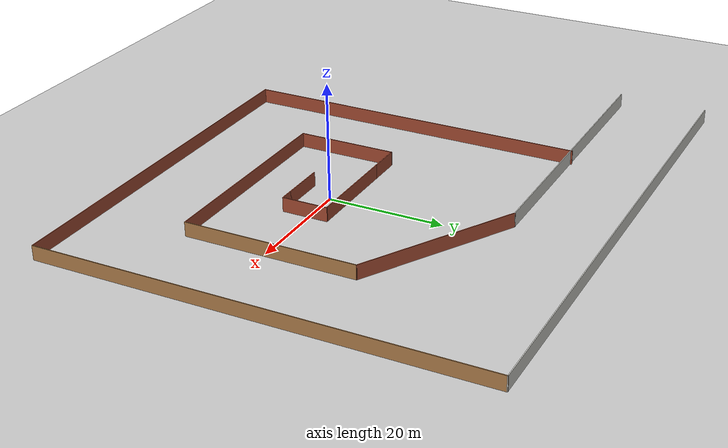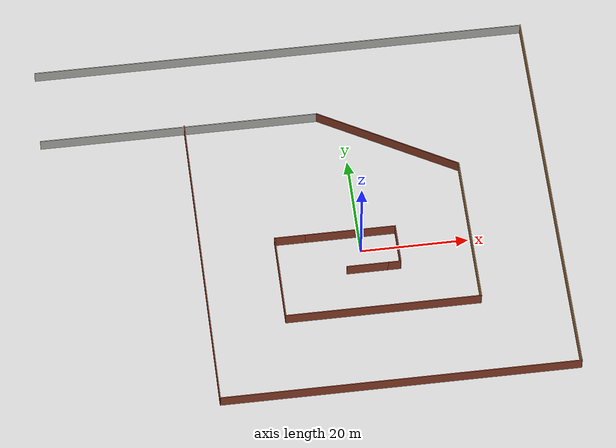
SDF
<?xml version="1.0"?>
<sdf version="1.5">
  <world name="default">

    <scene>
      <grid>false</grid>
    </scene>

      <include>
      <uri>model://ground_plane</uri>
    </include>

    <!-- A global light source -->
    <include>
      <uri>model://sun</uri>
      <pose>1.5 -30 100 0 0 0</pose>
    </include>

    <include>
      <name>lab</name>
      <static>true</static>
      <uri>model://teste</uri>
      <pose>-10 8 0 0 0 0</pose>
    </include>

    <!-- GUI -->
    <gui fullscreen='0'>
      <camera name='user_camera'>
        <pose>
        34.902946
        -61.301678
        25.866743
        0.0
        0.499643
        2.016195
        </pose>
      </camera>
    </gui>

  </world>
</sdf>

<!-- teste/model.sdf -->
<sdf version='1.7'>
  <model name='teste'>
    <pose>-8.51727 8.49164 0 0 -0 0</pose>
    <link name='Wall_0'>
      <collision name='Wall_0_Collision'>
        <geometry>
          <box>
            <size>7.75 0.15 2.5</size>
          </box>
        </geometry>
        <pose>0 0 1.25 0 -0 0</pose>
      </collision>
      <visual name='Wall_0_Visual'>
        <pose>0 0 1.25 0 -0 0</pose>
        <geometry>
          <box>
            <size>7.75 0.15 2.5</size>
          </box>
        </geometry>
        <material>
          <script>
            <uri>file://media/materials/scripts/gazebo.material</uri>
            <name>Gazebo/Bricks</name>
          </script>
          <ambient>1 1 1 1</ambient>
        </material>
        <meta>
          <layer>0</layer>
        </meta>
      </visual>
      <pose>10.6873 -12.6016 0 0 -0 0</pose>
    </link>
    <link name='Wall_1'>
      <collision name='Wall_1_Collision'>
        <geometry>
          <box>
            <size>2.5 0.15 2.5</size>
          </box>
        </geometry>
        <pose>0 0 1.25 0 -0 0</pose>
      </collision>
      <visual name='Wall_1_Visual'>
        <pose>0 0 1.25 0 -0 0</pose>
        <geometry>
          <box>
            <size>2.5 0.15 2.5</size>
          </box>
        </geometry>
        <material>
          <script>
            <uri>file://media/materials/scripts/gazebo.material</uri>
            <name>Gazebo/Bricks</name>
          </script>
          <ambient>1 1 1 1</ambient>
        </material>
        <meta>
          <layer>0</layer>
        </meta>
      </visual>
      <pose>15.6623 -12.6016 0 0 -0 0</pose>
    </link>
    <link name='Wall_101'>
      <collision name='Wall_101_Collision'>
        <geometry>
          <box>
            <size>60.5 0.15 2.5</size>
          </box>
        </geometry>
        <pose>0 0 1.25 0 -0 0</pose>
      </collision>
      <visual name='Wall_101_Visual'>
        <pose>0 0 1.25 0 -0 0</pose>
        <geometry>
          <box>
            <size>60.5 0.15 2.5</size>
          </box>
        </geometry>
        <material>
          <script>
            <uri>file://media/materials/scripts/gazebo.material</uri>
            <name>Gazebo/Bricks</name>
          </script>
          <ambient>1 1 1 1</ambient>
        </material>
        <meta>
          <layer>0</layer>
        </meta>
      </visual>
      <pose>-19.5024 -7.75 0 0 -0 -1.5708</pose>
    </link>
    <link name='Wall_102'>
      <collision name='Wall_102_Collision'>
        <geometry>
          <box>
            <size>66.25 0.15 2.5</size>
          </box>
        </geometry>
        <pose>0 0 1.25 0 -0 0</pose>
      </collision>
      <visual name='Wall_102_Visual'>
        <pose>0 0 1.25 0 -0 0</pose>
        <geometry>
          <box>
            <size>66.25 0.15 2.5</size>
          </box>
        </geometry>
        <material>
          <script>
            <uri>file://media/materials/scripts/gazebo.material</uri>
            <name>Gazebo/Bricks</name>
          </script>
          <ambient>1 1 1 1</ambient>
        </material>
        <meta>
          <layer>0</layer>
        </meta>
      </visual>
      <pose>13.5476 -37.925 0 0 -0 0</pose>
    </link>
    <link name='Wall_103'>
      <collision name='Wall_103_Collision'>
        <geometry>
          <box>
            <size>76 0.15 2.5</size>
          </box>
        </geometry>
        <pose>0 0 1.25 0 -0 0</pose>
      </collision>
      <visual name='Wall_103_Visual'>
        <pose>0 0 1.25 0 -0 0</pose>
        <geometry>
          <box>
            <size>76 0.15 2.5</size>
          </box>
        </geometry>
        <material>
          <script>
            <uri>file://media/materials/scripts/gazebo.material</uri>
            <name>Gazebo/Wood</name>
          </script>
          <ambient>1 1 1 1</ambient>
        </material>
        <meta>
          <layer>0</layer>
        </meta>
      </visual>
      <pose>46.5976 1e-06 0 0 -0 1.5708</pose>
    </link>
    <link name='Wall_104'>
      <collision name='Wall_104_Collision'>
        <geometry>
          <box>
            <size>93 0.15 2.5</size>
          </box>
        </geometry>
        <pose>0 0 1.25 0 -0 0</pose>
      </collision>
      <visual name='Wall_104_Visual'>
        <pose>0 0 1.25 0 -0 0</pose>
        <geometry>
          <box>
            <size>93 0.15 2.5</size>
          </box>
        </geometry>
        <material>
          <script>
            <uri>file://media/materials/scripts/gazebo.material</uri>
            <name>Gazebo/CeilingTiled</name>
          </script>
          <ambient>0.996078 0.47451 0.0196078 1</ambient>
        </material>
        <meta>
          <layer>0</layer>
        </meta>
      </visual>
      <pose>0.172556 37.925 0 0 -0 3.14159</pose>
    </link>
    <link name='Wall_2'>
      <collision name='Wall_2_Collision'>
        <geometry>
          <box>
            <size>8 0.15 2.5</size>
          </box>
        </geometry>
        <pose>0 0 1.25 0 -0 0</pose>
      </collision>
      <visual name='Wall_2_Visual'>
        <pose>0 0 1.25 0 -0 0</pose>
        <geometry>
          <box>
            <size>8 0.15 2.5</size>
          </box>
        </geometry>
        <material>
          <script>
            <uri>file://media/materials/scripts/gazebo.material</uri>
            <name>Gazebo/Bricks</name>
          </script>
          <ambient>1 1 1 1</ambient>
        </material>
        <meta>
          <layer>0</layer>
        </meta>
      </visual>
      <pose>16.8373 -8.67663 0 0 -0 1.5708</pose>
    </link>
    <link name='Wall_3'>
      <collision name='Wall_3_Collision'>
        <geometry>
          <box>
            <size>17 0.15 2.5</size>
          </box>
        </geometry>
        <pose>0 0 1.25 0 -0 0</pose>
      </collision>
      <visual name='Wall_3_Visual'>
        <pose>0 0 1.25 0 -0 0</pose>
        <geometry>
          <box>
            <size>17 0.15 2.5</size>
          </box>
        </geometry>
        <material>
          <script>
            <uri>file://media/materials/scripts/gazebo.material</uri>
            <name>Gazebo/Bricks</name>
          </script>
          <ambient>1 1 1 1</ambient>
        </material>
        <meta>
          <layer>0</layer>
        </meta>
      </visual>
      <pose>8.41227 -4.75164 0 0 -0 3.14159</pose>
    </link>
    <link name='Wall_4'>
      <collision name='Wall_4_Collision'>
        <geometry>
          <box>
            <size>5.75 0.15 2.5</size>
          </box>
        </geometry>
        <pose>0 0 1.25 0 -0 0</pose>
      </collision>
      <visual name='Wall_4_Visual'>
        <pose>0 0 1.25 0 -0 0</pose>
        <geometry>
          <box>
            <size>5.75 0.15 2.5</size>
          </box>
        </geometry>
        <material>
          <script>
            <uri>file://media/materials/scripts/gazebo.material</uri>
            <name>Gazebo/Bricks</name>
          </script>
          <ambient>1 1 1 1</ambient>
        </material>
        <meta>
          <layer>0</layer>
        </meta>
      </visual>
      <pose>-2.81272 -4.75164 0 0 -0 3.14159</pose>
    </link>
    <link name='Wall_5'>
      <collision name='Wall_5_Collision'>
        <geometry>
          <box>
            <size>17.25 0.15 2.5</size>
          </box>
        </geometry>
        <pose>0 0 1.25 0 -0 0</pose>
      </collision>
      <visual name='Wall_5_Visual'>
        <pose>0 0 1.25 0 -0 0</pose>
        <geometry>
          <box>
            <size>17.25 0.15 2.5</size>
          </box>
        </geometry>
        <material>
          <script>
            <uri>file://media/materials/scripts/gazebo.material</uri>
            <name>Gazebo/Bricks</name>
          </script>
          <ambient>1 1 1 1</ambient>
        </material>
        <meta>
          <layer>0</layer>
        </meta>
      </visual>
      <pose>-5.61273 -13.3016 0 0 -0 -1.5708</pose>
    </link>
    <link name='Wall_6'>
      <collision name='Wall_6_Collision'>
        <geometry>
          <box>
            <size>36.25 0.15 2.5</size>
          </box>
        </geometry>
        <pose>0 0 1.25 0 -0 0</pose>
      </collision>
      <visual name='Wall_6_Visual'>
        <pose>0 0 1.25 0 -0 0</pose>
        <geometry>
          <box>
            <size>36.25 0.15 2.5</size>
          </box>
        </geometry>
        <material>
          <script>
            <uri>file://media/materials/scripts/gazebo.material</uri>
            <name>Gazebo/Bricks</name>
          </script>
          <ambient>1 1 1 1</ambient>
        </material>
        <meta>
          <layer>0</layer>
        </meta>
      </visual>
      <pose>12.4373 -21.8516 0 0 -0 0</pose>
    </link>
    <link name='Wall_7'>
      <collision name='Wall_7_Collision'>
        <geometry>
          <box>
            <size>29.75 0.15 2.5</size>
          </box>
        </geometry>
        <pose>0 0 1.25 0 -0 0</pose>
      </collision>
      <visual name='Wall_7_Visual'>
        <pose>0 0 1.25 0 -0 0</pose>
        <geometry>
          <box>
            <size>29.75 0.15 2.5</size>
          </box>
        </geometry>
        <material>
          <script>
            <uri>file://media/materials/scripts/gazebo.material</uri>
            <name>Gazebo/Wood</name>
          </script>
          <ambient>1 1 1 1</ambient>
        </material>
        <meta>
          <layer>0</layer>
        </meta>
      </visual>
      <pose>30.4873 -7.05164 0 0 -0 1.5708</pose>
    </link>
    <link name='Wall_8'>
      <collision name='Wall_8_Collision'>
        <geometry>
          <box>
            <size>29 0.15 2.5</size>
          </box>
        </geometry>
        <pose>0 0 1.25 0 -0 0</pose>
      </collision>
      <visual name='Wall_8_Visual'>
        <pose>0 0 1.25 0 -0 0</pose>
        <geometry>
          <box>
            <size>29 0.15 2.5</size>
          </box>
        </geometry>
        <material>
          <script>
            <uri>file://media/materials/scripts/gazebo.material</uri>
            <name>Gazebo/Bricks</name>
          </script>
          <ambient>1 1 1 1</ambient>
        </material>
        <meta>
          <layer>0</layer>
        </meta>
      </visual>
      <pose>17.9949 14.9609 0 0 -0 2.61799</pose>
    </link>
    <link name='Wall_9'>
      <collision name='Wall_9_Collision'>
        <geometry>
          <box>
            <size>52.25 0.15 2.5</size>
          </box>
        </geometry>
        <pose>0 0 1.25 0 -0 0</pose>
      </collision>
      <visual name='Wall_9_Visual'>
        <pose>0 0 1.25 0 -0 0</pose>
        <geometry>
          <box>
            <size>52.25 0.15 2.5</size>
          </box>
        </geometry>
        <material>
          <script>
            <uri>file://media/materials/scripts/gazebo.material</uri>
            <name>Gazebo/CeilingTiled</name>
          </script>
          <ambient>0.996078 0.47451 0.0196078 1</ambient>
        </material>
        <meta>
          <layer>0</layer>
        </meta>
      </visual>
      <pose>-20.5476 22.1734 0 0 -0 3.14159</pose>
    </link>
    <static>1</static>
  </model>
</sdf>
